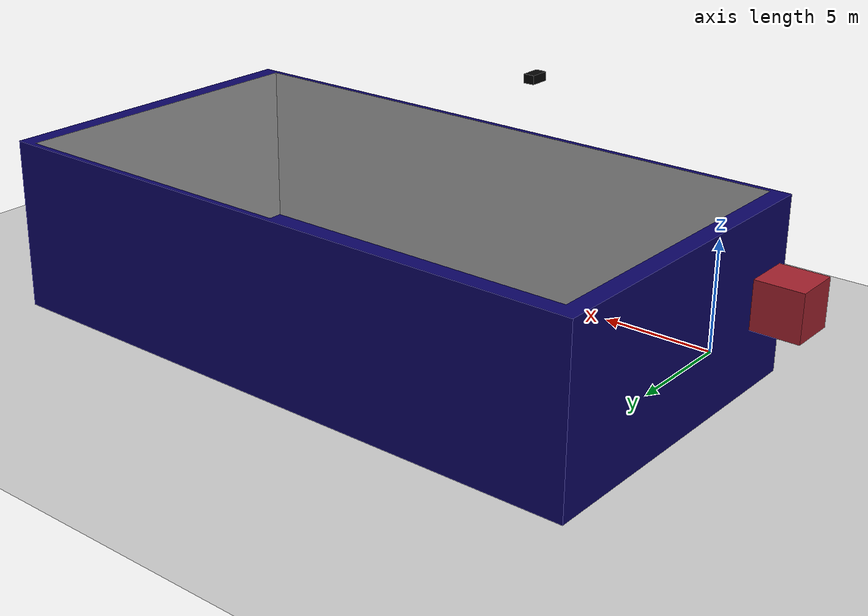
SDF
<sdf version="1.4">
 <world name="default">
  <include><uri>model://ground_plane</uri></include>
  <include><uri>model://walls</uri><pose>9 0 -.5 1.57 0 3.14</pose></include>
  <include><uri>model://bunker</uri><pose>4 9 0 0 0 0</pose></include>
  <model name="transparentbox">
   <include><uri>model://transparentbox</uri><pose>-5 4 5 1.57 0 3.14</pose></include>
  </model>
  <model name="locker_bin">
   <include><uri>model://locker_bin</uri><pose>7 5 10 1.57 0 4.71</pose></include>
  </model>
  <include><uri>model://sun</uri></include>
 </world>
</sdf>

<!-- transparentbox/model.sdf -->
<sdf version="1.6">
	<model name="transparentbox">
      <static>true</static>
      <link name="body">
        <visual name="visual">
          <geometry>
            <mesh>
            	<uri>model://transparentbox/transparentbox.dae</uri>
            	<scale>1 1 1</scale>
            </mesh>
          </geometry>
        </visual>
      </link>
    </model>
</sdf>

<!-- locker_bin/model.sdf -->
<sdf version="1.6">
	<model name="locker_bin">
      <static>true</static>
      <link name="body">
        <visual name="visual">
          <geometry>
            <mesh>
            	<uri>model://locker_bin/locker_bin.dae</uri>
            	<scale>1 1 1</scale>
            </mesh>
          </geometry>
        </visual>
      </link>
    </model>
</sdf>

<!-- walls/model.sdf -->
<sdf version="1.6">
	<model name="Arena">
      <static>true</static>
      <link name="body">
        <collision name = 'collision'>
          <geometry>
            <mesh>
              <uri>model://walls/Floor_Blue.dae</uri>
            </mesh>
          </geometry>
        </collision>
        <visual name="visual">
          <geometry>
            <mesh>
            	<uri>model://walls/Floor_Blue.dae</uri>
            	<scale>1 1 1</scale>
            </mesh>
          </geometry>
        </visual>
      </link>
    </model>
</sdf>

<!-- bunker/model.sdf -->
<sdf version="1.6">
	<model name="Bunker">
      <static>true</static>
      <link name="body">
        <collision name = 'collision'>
          <geometry>
            <mesh>
              <uri>model://bunker/bunker.dae</uri>
              <scale>.3048 .3048 .3048</scale>
            </mesh>
          </geometry>
        </collision>
        <visual name="visual">
          <geometry>
            <mesh>
            	<uri>model://bunker/bunker.dae</uri>
            	<scale>.3048 .3048 .3048</scale>
            </mesh>
          </geometry>
        </visual>
      </link>
    </model>
</sdf>
